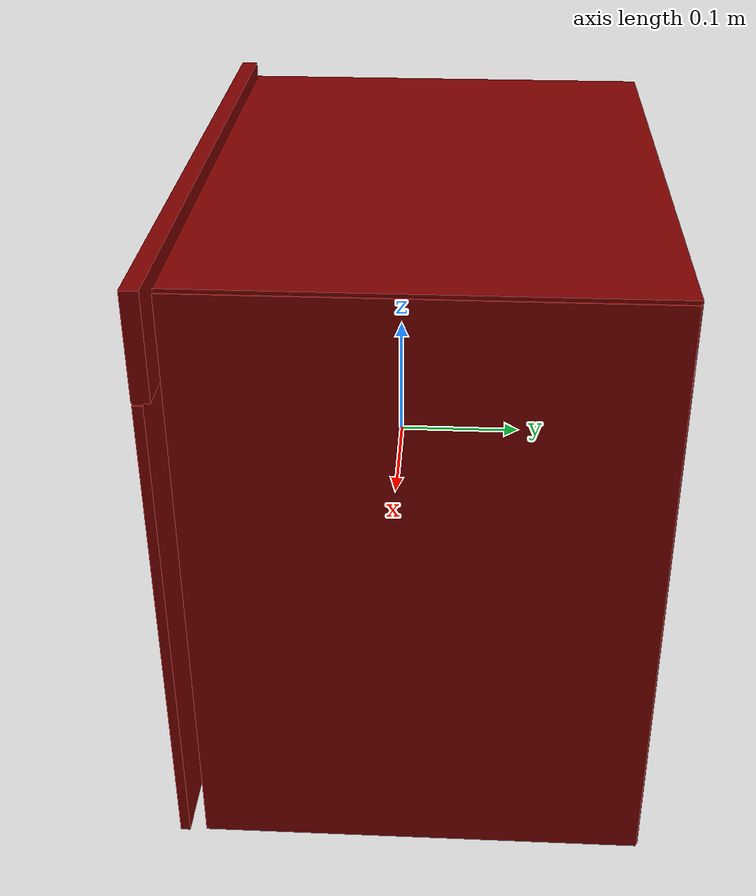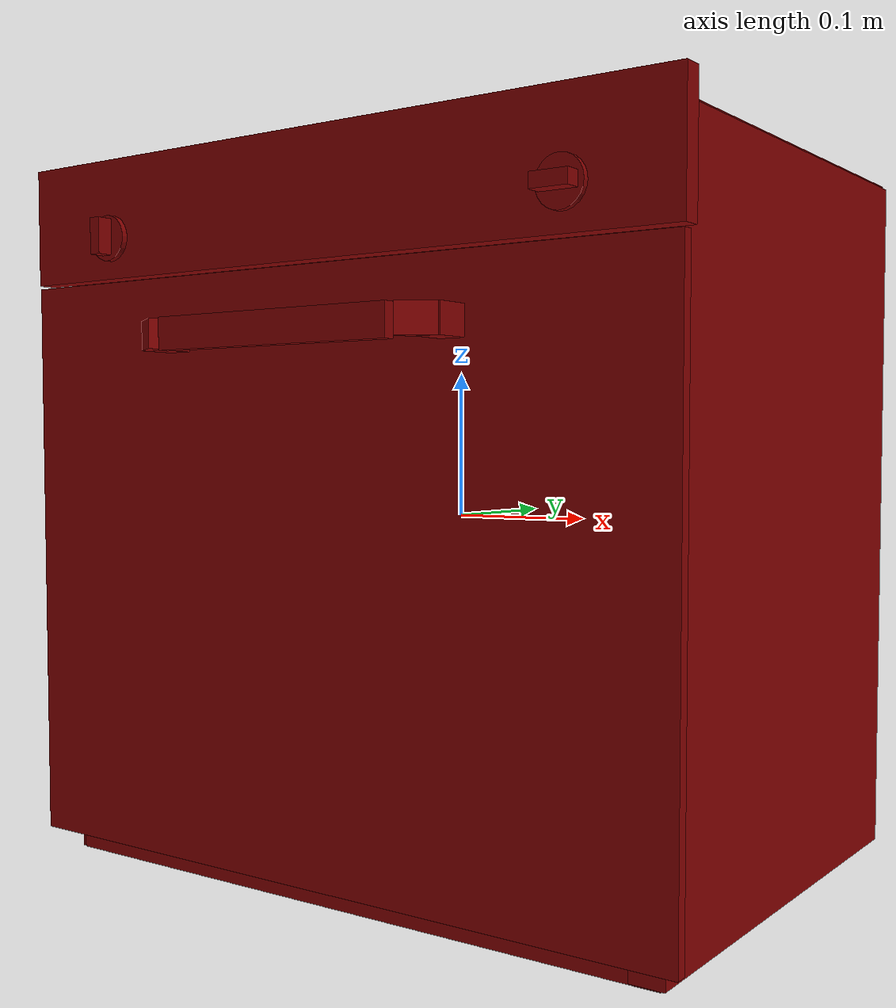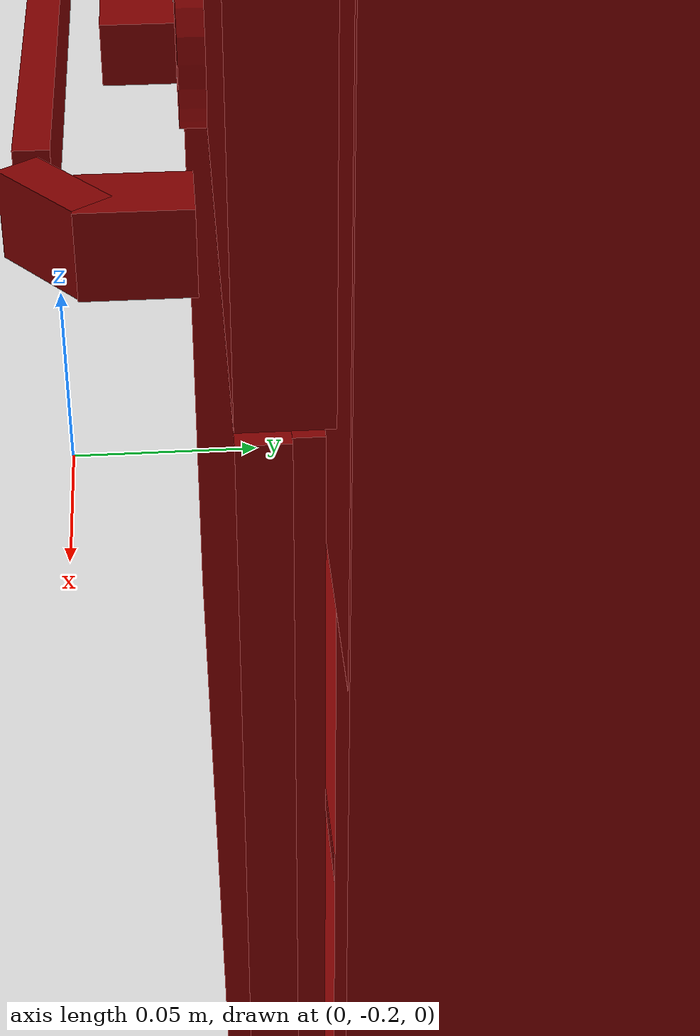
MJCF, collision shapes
<?xml version='1.0' encoding='UTF-8'?>
<mujoco model="model">
  <option timestep="0.002" gravity="0.0 0.0 -9.81"/>
  <compiler angle="radian"/>
  <asset>
    <mesh file="visuals/door.obj" name="door_vis"/>
    <mesh file="visuals/door_Clear.obj" name="door_Clear_vis"/>
    <mesh file="visuals/knob_temp.obj" name="knob_temp_vis"/>
    <mesh file="visuals/knob_time.obj" name="knob_time_vis"/>
    <mesh file="visuals/Body001.obj" name="Body001_vis"/>
    <mesh file="visuals/rack0.obj" name="rack0_vis"/>
    <mesh file="visuals/rack1.obj" name="rack1_vis"/>
    <texture file="visuals/T_BC001.png" name="Body001_material" type="2d"/>
    <material name="Body001_material" rgba="1 1 1 1.0" texture="Body001_material" shininess="0.5" specular="2"/>
    <texture file="visuals/T_BC001.png" name="door_material" type="2d"/>
    <material name="door_material" rgba="1 1 1 1.0" texture="door_material" shininess="0.5" specular="1"/>
    <texture file="visuals/T_BC001.png" name="door_Clear_material" type="2d"/>
    <material name="door_Clear_material" rgba="1 1 1 0.800000011920929" texture="door_Clear_material" shininess="0.5" specular="0.3103448502657381"/>
    <texture file="visuals/T_BC001.png" name="knob_temp_material" type="2d"/>
    <material name="knob_temp_material" rgba="1 1 1 1.0" texture="knob_temp_material" shininess="0.5" specular="0.3103448502657381"/>
    <texture file="visuals/T_BC001.png" name="knob_time_material" type="2d"/>
    <material name="knob_time_material" rgba="1 1 1 1.0" texture="knob_time_material" shininess="0.5" specular="0.3103448502657381"/>
    <texture file="visuals/T_BC001.png" name="rack0_material" type="2d"/>
    <material name="rack0_material" rgba="1 1 1 1.0" texture="rack0_material" shininess="0.5" specular="2"/>
    <texture file="visuals/T_BC001.png" name="rack1_material" type="2d"/>
    <material name="rack1_material" rgba="1 1 1 1.0" texture="rack1_material" shininess="0.5" specular="2"/>
  </asset>
  <default>
    <default class="visual">
      <geom conaffinity="0" contype="0" group="1" type="mesh"/>
    </default>
    <default class="collision">
      <geom group="0" rgba="0.5 0 0 0.5"/>
    </default>
    <default class="spawn">
      <geom group="0" rgba="1 1 1 0.5" contype="0" conaffinity="0"/>
      <site group="0" rgba="1 1 1 0.5"/>
    </default>
    <default class="region">
      <geom group="1" conaffinity="0" contype="0" rgba="0 1 0 0"/>
    </default>
  </default>
  <worldbody>
    <body>
      <body name="object">
        <geom mesh="Body001_vis" type="mesh" solimp="0.998 0.998 0.001" solref="0.001 1" friction="0.95 0.3 0.1" class="visual" material="Body001_material"/>
        <geom class="collision" type="box" pos="0.0 0.1824834942817688 -0.004726151004433632" size="0.23460212349891663 0.019386814907193184 0.23982156813144684" quat="1.0 0.0 0.0 0.0"/>
        <geom class="collision" type="box" pos="0.22572404146194458 0.026776457205414772 -0.004726149141788483" size="0.011551965959370136 0.17374542355537415 0.23983299732208252" quat="1.0 0.0 0.0 0.0"/>
        <geom class="collision" type="box" pos="-0.22491002082824707 0.026776457205414772 -0.004726149141788483" size="0.011538430117070675 0.17374542355537415 0.23983299732208252" quat="1.0 0.0 0.0 0.0"/>
        <geom class="collision" type="box" pos="-5.170984272627039e-17 0.027450669556856155 0.1707632690668106" size="0.23460212349891663 0.17441964149475098 0.06665664166212082" quat="1.0 0.0 0.0 0.0"/>
        <geom class="collision" type="box" pos="-2.154970777837499e-23 0.02745065838098526 -0.21438910067081451" size="0.23459339141845703 0.1744196116924286 0.03068273700773716" quat="1.0 0.0 0.0 0.0"/>
        <geom class="collision" type="box" pos="-0.00019180227536708117 -0.15723027288913727 0.20380662381649017" size="0.25381940603256226 0.006626754533499479 0.040398191660642624" quat="1.0 0.0 0.0 0.0"/>
        <geom class="collision" type="box" pos="-0.20844478905200958 0.0040460205636918545 0.060504816472530365" size="0.0037520965561270714 0.13169488310813904 0.0015350169269368052" quat="1.0 0.0 0.0 0.0"/>
        <geom class="collision" type="box" pos="-0.20844478905200958 0.0040460205636918545 0.028862453997135162" size="0.0037520965561270714 0.13169489800930023 0.0015350169269368052" quat="1.0 0.0 0.0 0.0"/>
        <geom class="collision" type="box" pos="-0.20844478905200958 0.0040460205636918545 -0.007044747471809387" size="0.0037520965561270714 0.13169491291046143 0.0015350169269368052" quat="1.0 0.0 0.0 0.0"/>
        <geom class="collision" type="box" pos="-0.20844478905200958 0.0040460205636918545 -0.041301045566797256" size="0.0037520965561270714 0.13169492781162262 0.0015350169269368052" quat="1.0 0.0 0.0 0.0"/>
        <geom class="collision" type="box" pos="-0.20844478905200958 0.0040460205636918545 -0.07452308386564255" size="0.0037520965561270714 0.1316949427127838 0.0015350169269368052" quat="1.0 0.0 0.0 0.0"/>
        <geom class="collision" type="box" pos="-0.20844478905200958 0.0040460205636918545 -0.10770630836486816" size="0.0037520965561270714 0.131694957613945 0.0015350169269368052" quat="1.0 0.0 0.0 0.0"/>
        <geom class="collision" type="box" pos="-0.20844478905200958 0.0040460205636918545 -0.14254043996334076" size="0.0037520965561270714 0.1316949725151062 0.0015350169269368052" quat="1.0 0.0 0.0 0.0"/>
        <geom class="collision" type="box" pos="-0.21232591569423676 -0.127219095826149 -0.042481325566768646" size="0.0017105307197198272 0.0015350293833762407 0.10056136548519135" quat="1.0 0.0 0.0 0.0"/>
        <geom class="collision" type="box" pos="-0.21232591569423676 0.1336628496646881 -0.042481325566768646" size="0.0017105307197198272 0.0015350289177149534 0.10056136548519135" quat="1.0 0.0 0.0 0.0"/>
        <geom class="collision" type="box" pos="0.21071185171604156 0.0023977330420166254 0.060504812747240067" size="0.003752116346731782 0.13169501721858978 0.0015350169269368052" quat="1.0 0.0 0.0 0.0"/>
        <geom class="collision" type="box" pos="0.21071185171604156 0.0023977330420166254 0.028862450271844864" size="0.003752116346731782 0.13169503211975098 0.0015350169269368052" quat="1.0 0.0 0.0 0.0"/>
        <geom class="collision" type="box" pos="0.21071185171604156 0.0023977330420166254 -0.007044747471809387" size="0.003752116346731782 0.13169506192207336 0.0015350169269368052" quat="1.0 0.0 0.0 0.0"/>
        <geom class="collision" type="box" pos="0.21071185171604156 0.0023977330420166254 -0.041301045566797256" size="0.003752116346731782 0.13169507682323456 0.0015350169269368052" quat="1.0 0.0 0.0 0.0"/>
        <geom class="collision" type="box" pos="0.21071185171604156 0.0023977330420166254 -0.07452308386564255" size="0.003752116346731782 0.13169509172439575 0.0015350169269368052" quat="1.0 0.0 0.0 0.0"/>
        <geom class="collision" type="box" pos="0.21071185171604156 0.0023977330420166254 -0.10770630836486816" size="0.003752116346731782 0.13169510662555695 0.0015350169269368052" quat="1.0 0.0 0.0 0.0"/>
        <geom class="collision" type="box" pos="0.21071185171604156 0.0023977330420166254 -0.14254043996334076" size="0.003752116346731782 0.13169512152671814 0.0015350169269368052" quat="1.0 0.0 0.0 0.0"/>
        <geom class="collision" type="box" pos="0.21459296345710754 0.1336628645658493 -0.042481325566768646" size="0.0017105309525504708 0.0015350262401625514 0.10056136548519135" quat="1.0 0.0 0.0 0.0"/>
        <geom class="collision" type="box" pos="0.21459299325942993 -0.12721911072731018 -0.042481325566768646" size="0.0017105309525504708 0.001535025890916586 0.10056136548519135" quat="1.0 0.0 0.0 0.0"/>
        <body name="door">
          <joint axis="1.0 0.0 0.0" pos="-0.00017325728549622 -0.163783896015957 -0.2293272763490677" limited="true" name="door_joint" range="0.0 1.15" type="hinge" damping="1" frictionloss="1" armature="1" stiffness="2"/>
          <geom mesh="door_vis" type="mesh" solimp="0.998 0.998 0.001" solref="0.001 1" friction="0.95 0.3 0.1" class="visual" material="door_material"/>
          <geom class="collision" type="box" pos="-0.00017325728549622 -0.1600053608417511 -0.034198835492134094" size="0.25299128890037537 0.0037785351742058992 0.1951284408569336" quat="1.0 0.0 0.0 0.0" name="door_main"/>
          <geom class="collision" type="box" pos="-0.0022636610083281994 -0.15104342997074127 -0.028847571462392807" size="0.20444513857364655 0.003357689129188657 0.15877605974674225" quat="1.0 0.0 0.0 0.0"/>
          <geom class="collision" type="box" pos="0.10989735275506973 -0.1776062548160553 0.1203746572136879" size="0.00873653031885624 0.011815428733825684 0.009503255598247051" quat="1.0 0.0 0.0 0.0"/>
          <geom class="collision" type="box" pos="-0.00048359966604039073 -0.19816139340400696 0.1199285089969635" size="0.09041035920381546 0.003852598136290908 0.010409091599285603" quat="1.0 0.0 0.0 0.0" name="door_handle_main"/>
          <geom class="collision" type="box" pos="-0.11008521169424057 -0.1776062548160553 0.1203746572136879" size="0.00873653031885624 0.011815428733825684 0.009503255598247051" quat="1.0 0.0 0.0 0.0"/>
          <geom class="collision" type="box" pos="-0.10588477551937103 -0.19291187822818756 0.1203746572136879" size="0.004945356864482164 0.012351430021226406 0.009503255598247051" quat="0.8756958246231079 0.0 0.0 0.4828631281852722"/>
          <geom class="collision" type="box" pos="0.10485684126615524 -0.19315189123153687 0.1203746572136879" size="0.004945356864482164 0.01235143095254898 0.009503255598247051" quat="0.4391418993473053 0.0 0.0 0.8984177112579346"/>
          <body name="door_Clear">
            <geom mesh="door_Clear_vis" type="mesh" solimp="0.998 0.998 0.001" solref="0.001 1" friction="0.95 0.3 0.1" class="visual" material="door_Clear_material"/>
            <geom class="collision" type="box" pos="-0.0022636610083281994 -0.15104342997074127 -0.028847571462392807" size="0.20444513857364655 0.003357689129188657 0.15877605974674225" quat="1.0 0.0 0.0 0.0"/>
          </body>
        </body>
        <body name="knob_temp">
          <joint axis="0.0 1.0 0.0" pos="0.18150952458381653 -0.16937194764614105 0.19066676497459412" limited="true" name="knob_temp_joint" range="0.0 3.2288591161895095" type="hinge" damping="0.05" armature="1" frictionloss="0.75"/>
          <geom mesh="knob_temp_vis" type="mesh" solimp="0.998 0.998 0.001" solref="0.001 1" friction="0.95 0.3 0.1" class="visual" material="knob_temp_material"/>
          <geom class="collision" type="cylinder" pos="0.1815662384033203 -0.16663812100887299 0.19058844447135925" size="0.015369107015430927 0.0020308762323111296" quat="0.5060561299324036 0.5060566067695618 -0.4938690960407257 0.4938696026802063" friction="100 0.5 0.01"/>
          <geom class="collision" type="box" pos="0.18109941482543945 -0.17416627705097198 0.19064047932624817" size="0.012308906763792038 0.00535581586882472 0.004561711102724075" quat="1.0 0.0 0.0 0.0" name="knob_temp_main" friction="100 0.5 0.01"/>
        </body>
        <body name="knob_time">
          <joint axis="0.0 1.0 0.0" pos="-0.1764325350522995 -0.16937194764614105 0.19066421687602997" limited="true" name="knob_time_joint" range="0.0 3.979350694547071" type="hinge" damping="0.05" armature="1" frictionloss="0.75"/>
          <geom mesh="knob_time_vis" type="mesh" solimp="0.998 0.998 0.001" solref="0.001 1" friction="0.95 0.3 0.1" class="visual" material="knob_time_material"/>
          <geom class="collision" type="cylinder" pos="-0.17650945484638214 -0.16663812100887299 0.19060562551021576" size="0.015369107015430927 0.0020308762323111296" quat="0.7071068286895752 0.7071067690849304 0.0 0.0" friction="100 0.5 0.01"/>
          <geom class="collision" type="box" pos="-0.17646881937980652 -0.17416627705097198 0.19107358157634735" size="0.004265427589416504 0.00535581586882472 0.012208575382828712" quat="1.0 0.0 0.0 0.0" name="knob_time_main" friction="100 0.5 0.01"/>
        </body>
        <body name="rack0">
          <geom class="region" name="reg_rack0" type="box" pos="0.0010818317532539368 0.004581823945045471 -0.051758479326963425" size="0.19240838831663132 0.14425577020645142 0.040853092283010484"/>
          <joint axis="0.0 -1.0 0.0" pos="0.0008335974416695535 0.003189469687640667 -0.0861123651266098" limited="true" name="rack0_joint" range="0.0 0.24" type="slide" damping="1" frictionloss="1" armature=".01" stiffness="0.05"/>
          <geom mesh="rack0_vis" type="mesh" solimp="0.998 0.998 0.001" solref="0.001 1" friction="0.95 0.3 0.1" class="visual" material="rack0_material"/>
          <geom class="collision" type="box" pos="0.001498187193647027 0.004046028945595026 -0.09911735355854034" size="0.19799493253231049 0.1479298174381256 0.0033047874458134174" quat="1.0 0.0 0.0 0.0"/>
          <geom class="collision" type="box" pos="0.1983078271150589 0.004046029411256313 -0.08437518775463104" size="0.0017493541818112135 0.14622405171394348 0.012357193976640701" quat="1.0 0.0 0.0 0.0"/>
          <geom class="collision" type="box" pos="-0.19658930599689484 0.004046029411256313 -0.0835697203874588" size="0.002222972922027111 0.14622385799884796 0.013753497041761875" quat="1.0 0.0 0.0 0.0"/>
          <geom class="collision" type="box" pos="-0.2030797004699707 0.004046027548611164 -0.0700896680355072" size="0.0014260637108236551 0.1462242305278778 0.006370392628014088" quat="0.677474856376648 -5.197932538493662e-14 0.7355459332466125 9.882714380182733e-08"/>
          <geom class="collision" type="box" pos="0.2049255669116974 0.004046027548611164 -0.07028138637542725" size="0.0013065115781500936 0.1462242305278778 0.006370392628014088" quat="5.284251258785844e-08 0.7355459332466125 -5.284258364213201e-08 -0.677474856376648"/>
        </body>
        <body name="rack1">
          <geom class="region" name="reg_rack1" type="box" pos="0.001185387372970581 0.0033649876713752747 0.05362770101055503" size="0.20228533244132996 0.1435056830048561 0.046890478882938624"/>
          <joint axis="0.0 -1.0 0.0" pos="0.0019009001553058624 0.003189456183463335 -0.0022508730180561543" limited="true" name="rack1_joint" range="0.0 0.24" type="slide" damping="1" frictionloss="1" armature=".01" stiffness="0.05"/>
          <geom mesh="rack1_vis" type="mesh" solimp="0.998 0.998 0.001" solref="0.001 1" friction="0.95 0.3 0.1" class="visual" material="rack1_material"/>
          <geom class="collision" type="box" pos="0.001498187193647027 0.004046028945595026 -0.0017610006034374237" size="0.21051464974880219 0.14658261835575104 0.003201427636668086" quat="1.0 0.0 0.0 0.0"/>
        </body>
        <geom class="region" name="reg_int" type="box" pos="0.0011647194623947144 0.00810357928276062 -0.0396123081445694" size="0.20110906457901 0.15093557333946228 0.1394372115135193"/>
        <geom class="region" name="reg_main" type="box" pos="7.450580596923828e-09 0.01888950914144516 0.0" size="0.2550479600429535 0.18398077583312988 0.24607182836532593"/>
      </body>
    </body>
  </worldbody>
  <actuator>
    <motor name="door_joint_actuator" joint="door_joint" gear="50"/>
    <motor name="knob_temp_joint_actuator" joint="knob_temp_joint" gear="50"/>
    <motor name="knob_time_joint_actuator" joint="knob_time_joint" gear="50"/>
    <motor name="rack0_joint_actuator" joint="rack0_joint" gear="50"/>
    <motor name="rack1_joint_actuator" joint="rack1_joint" gear="50"/>
  </actuator>
</mujoco>
